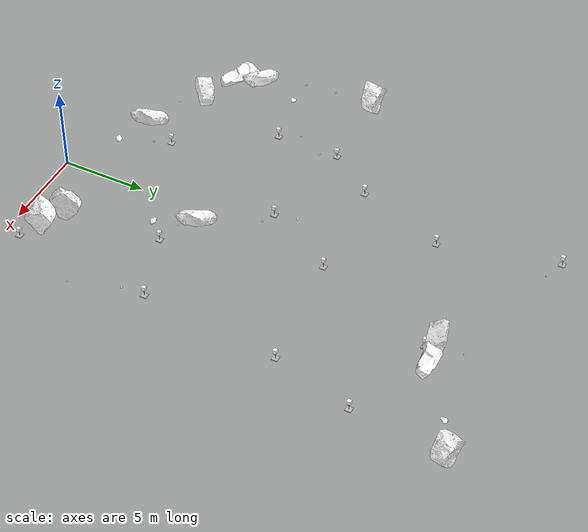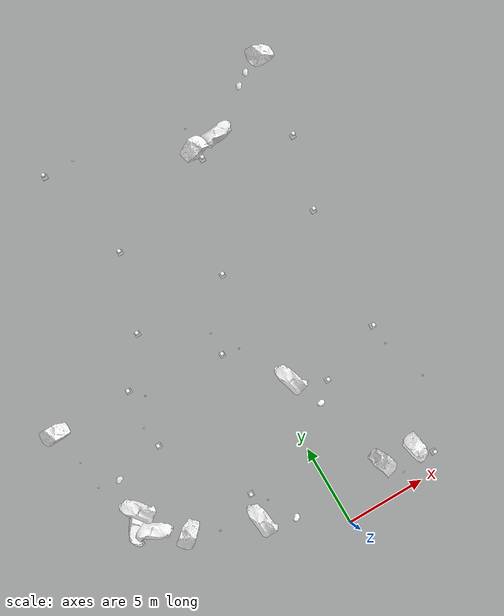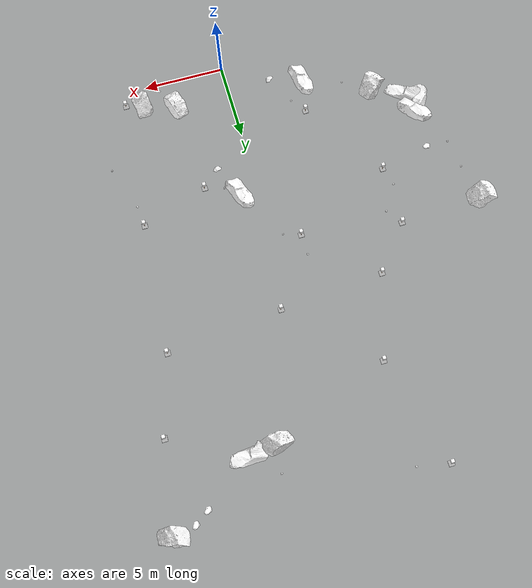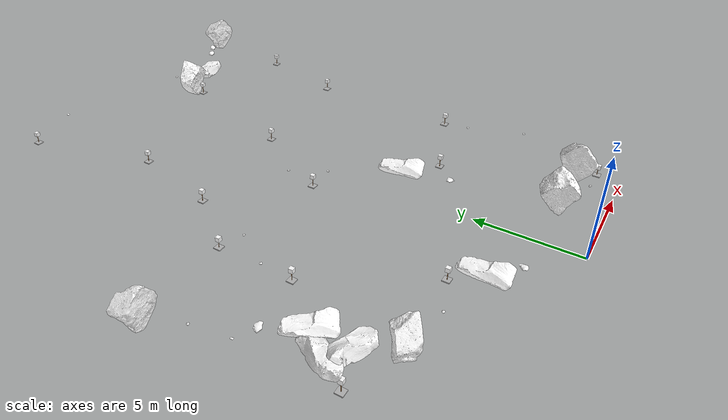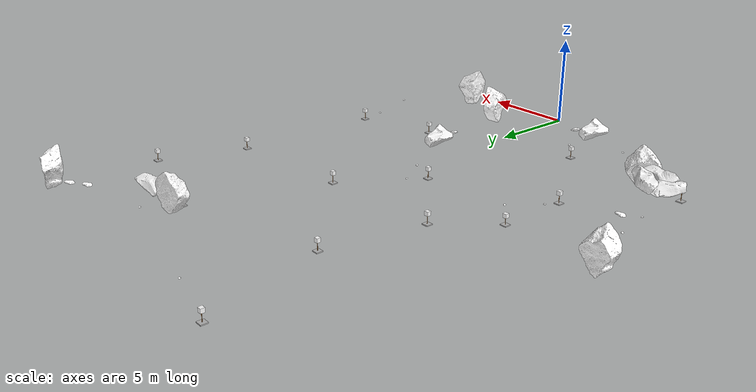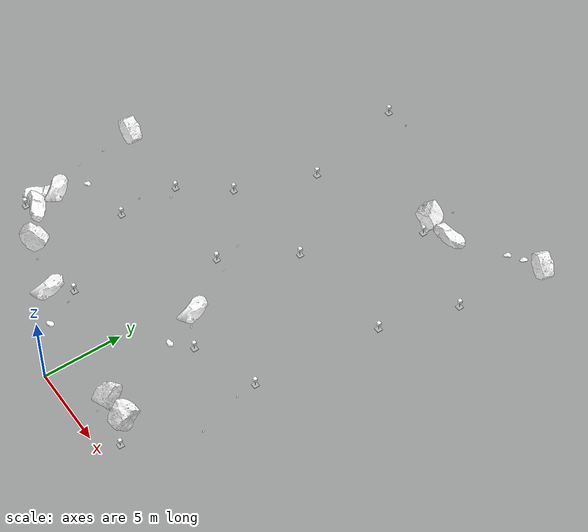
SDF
<sdf version="1.7">
 <world name="rover_world">
  <gravity>0 0 -9.81</gravity>
  <physics name="dart_physics" type="ignored">
   <max_step_size>0.003</max_step_size>
   <real_time_update_rate>333</real_time_update_rate>
   <real_time_factor>1.0</real_time_factor>
  </physics>
  <plugin filename="ignition-gazebo-physics-system" name="ignition::gazebo::systems::Physics"/>
  <plugin filename="ignition-gazebo-user-commands-system" name="ignition::gazebo::systems::UserCommands"/>
  <plugin filename="ignition-gazebo-scene-broadcaster-system" name="ignition::gazebo::systems::SceneBroadcaster"/>
  <plugin filename="ignition-gazebo-contact-system" name="ignition::gazebo::systems::Contact"/>
  <plugin filename="ignition-gazebo-pose-publisher-system" name="ignition::gazebo::systems::PosePublisher">
   <publish_link_pose>false</publish_link_pose>
   <publish_nested_model_pose>false</publish_nested_model_pose>
   <use_pose_vector_msg>true</use_pose_vector_msg>
   <update_frequency>50</update_frequency>
  </plugin>
  <plugin filename="ignition-gazebo-sensors-system" name="ignition::gazebo::systems::Sensors">
   <render_engine>ogre2</render_engine>
  </plugin>
  <plugin filename="ignition-gazebo-imu-system" name="ignition::gazebo::systems::Imu"/>
  <plugin filename="ignition-gazebo-magnetometer-system" name="ignition::gazebo::systems::Magnetometer"/>
  <scene>
   <ambient>0.95 0.95 0.95 1</ambient>
   <background>0.70 0.70 0.70 1</background>
   <shadows>false</shadows>
  </scene>
  <light type="directional" name="sun">
   <cast_shadows>false</cast_shadows>
   <pose>0 0 30 0 0 0</pose>
   <diffuse>0.9 0.85 0.8 1</diffuse>
   <specular>0.2 0.2 0.2 1</specular>
   <direction>-0.3 0.3 -0.9</direction>
  </light>
  <model name="Rock_1">
   <static>true</static>
   <pose>-10.7521 9.1590 0.2245 0.0000 0.0000 -2.9995</pose>
   <link name="rock_link">
    <visual name="visual">
     <geometry><mesh><uri>model://rock_8/meshes/rock_8.obj</uri></mesh></geometry>
     <material>
      <ambient>1 1 1 1</ambient>
      <diffuse>1 1 1 1</diffuse>
      <pbr><metal><albedo_map>model://rock_5/meshes/rock_small_diffuse.jpg</albedo_map></metal></pbr>
     </material>
    </visual>
    <collision name="collision">
     <geometry><mesh><uri>model://rock_8/meshes/rock_8.obj</uri></mesh></geometry>
    </collision>
   </link>
  </model>
  <model name="Rock_2">
   <static>true</static>
   <pose>-2.6425 1.9083 0.5794 0.0000 0.0000 0.4169</pose>
   <link name="rock_link">
    <visual name="visual">
     <geometry><mesh><uri>model://rock_8/meshes/rock_8.obj</uri></mesh></geometry>
     <material>
      <ambient>1 1 1 1</ambient>
      <diffuse>1 1 1 1</diffuse>
      <pbr><metal><albedo_map>model://rock_5/meshes/rock_small_diffuse.jpg</albedo_map></metal></pbr>
     </material>
    </visual>
    <collision name="collision">
     <geometry><mesh><uri>model://rock_8/meshes/rock_8.obj</uri></mesh></geometry>
    </collision>
   </link>
  </model>
  <model name="Rock_5">
   <static>true</static>
   <pose>3.2422 25.0706 0.6621 0.0000 0.0000 -2.8471</pose>
   <link name="rock_link">
    <visual name="visual">
     <geometry><mesh><uri>model://rock_1/meshes/rock_1.obj</uri></mesh></geometry>
     <material>
      <ambient>1 1 1 1</ambient>
      <diffuse>1 1 1 1</diffuse>
      <pbr><metal><albedo_map>model://rock_1/meshes/rock_1_diffuse.jpg</albedo_map></metal></pbr>
     </material>
    </visual>
    <collision name="collision">
     <geometry><mesh><uri>model://rock_1/meshes/rock_1.obj</uri></mesh></geometry>
    </collision>
   </link>
  </model>
  <model name="Rock_12">
   <static>true</static>
   <pose>-10.5786 7.0572 1.0043 0.0000 0.0000 -0.7139</pose>
   <link name="rock_link">
    <visual name="visual">
     <geometry><mesh><uri>model://rock_4/meshes/rock_4.obj</uri></mesh></geometry>
     <material>
      <ambient>1 1 1 1</ambient>
      <diffuse>1 1 1 1</diffuse>
      <pbr><metal><albedo_map>model://rock_4/meshes/rock_4_diffuse.jpg</albedo_map></metal></pbr>
     </material>
    </visual>
    <collision name="collision">
     <geometry><mesh><uri>model://rock_4/meshes/rock_4.obj</uri></mesh></geometry>
    </collision>
   </link>
  </model>
  <model name="Rock_13">
   <static>true</static>
   <pose>-11.9852 9.3769 0.6021 0.0000 0.0000 1.7277</pose>
   <link name="rock_link">
    <visual name="visual">
     <geometry><mesh><uri>model://rock_5/meshes/rock_5.obj</uri></mesh></geometry>
     <material>
      <ambient>1 1 1 1</ambient>
      <diffuse>1 1 1 1</diffuse>
      <pbr><metal><albedo_map>model://rock_5/meshes/rock_small_diffuse.jpg</albedo_map></metal></pbr>
     </material>
    </visual>
    <collision name="collision">
     <geometry><mesh><uri>model://rock_5/meshes/rock_5.obj</uri></mesh></geometry>
    </collision>
   </link>
  </model>
  <model name="Rock_15">
   <static>true</static>
   <pose>-12.2444 11.2058 0.4953 0.0000 0.0000 -1.7183</pose>
   <link name="rock_link">
    <visual name="visual">
     <geometry><mesh><uri>model://rock_5/meshes/rock_5.obj</uri></mesh></geometry>
     <material>
      <ambient>1 1 1 1</ambient>
      <diffuse>1 1 1 1</diffuse>
      <pbr><metal><albedo_map>model://rock_5/meshes/rock_small_diffuse.jpg</albedo_map></metal></pbr>
     </material>
    </visual>
    <collision name="collision">
     <geometry><mesh><uri>model://rock_5/meshes/rock_5.obj</uri></mesh></geometry>
    </collision>
   </link>
  </model>
  <model name="Rock_17">
   <static>true</static>
   <pose>7.4015 8.1647 0.3148 0.0000 0.0000 -0.3836</pose>
   <link name="rock_link">
    <visual name="visual">
     <geometry><mesh><uri>model://rock_5/meshes/rock_5.obj</uri></mesh></geometry>
     <material>
      <ambient>1 1 1 1</ambient>
      <diffuse>1 1 1 1</diffuse>
      <pbr><metal><albedo_map>model://rock_5/meshes/rock_small_diffuse.jpg</albedo_map></metal></pbr>
     </material>
    </visual>
    <collision name="collision">
     <geometry><mesh><uri>model://rock_5/meshes/rock_5.obj</uri></mesh></geometry>
    </collision>
   </link>
  </model>
  <model name="Rock_23">
   <static>true</static>
   <pose>-7.9334 11.0959 0.2887 0.0000 0.0000 0.3878</pose>
   <link name="rock_link">
    <visual name="visual">
     <geometry><mesh><uri>model://rock_5/meshes/rock_5.obj</uri></mesh></geometry>
     <material>
      <ambient>1 1 1 1</ambient>
      <diffuse>1 1 1 1</diffuse>
      <pbr><metal><albedo_map>model://rock_5/meshes/rock_small_diffuse.jpg</albedo_map></metal></pbr>
     </material>
    </visual>
    <collision name="collision">
     <geometry><mesh><uri>model://rock_5/meshes/rock_5.obj</uri></mesh></geometry>
    </collision>
   </link>
  </model>
  <model name="Rock_24">
   <static>true</static>
   <pose>4.2284 1.0327 0.8998 0.0000 0.0000 -2.7517</pose>
   <link name="rock_link">
    <visual name="visual">
     <geometry><mesh><uri>model://rock_5/meshes/rock_5.obj</uri></mesh></geometry>
     <material>
      <ambient>1 1 1 1</ambient>
      <diffuse>1 1 1 1</diffuse>
      <pbr><metal><albedo_map>model://rock_5/meshes/rock_small_diffuse.jpg</albedo_map></metal></pbr>
     </material>
    </visual>
    <collision name="collision">
     <geometry><mesh><uri>model://rock_5/meshes/rock_5.obj</uri></mesh></geometry>
    </collision>
   </link>
  </model>
  <model name="Rock_26">
   <static>true</static>
   <pose>5.0589 24.7832 0.3391 0.0000 0.0000 -2.8890</pose>
   <link name="rock_link">
    <visual name="visual">
     <geometry><mesh><uri>model://rock_4/meshes/rock_4.obj</uri></mesh></geometry>
     <material>
      <ambient>1 1 1 1</ambient>
      <diffuse>1 1 1 1</diffuse>
      <pbr><metal><albedo_map>model://rock_4/meshes/rock_4_diffuse.jpg</albedo_map></metal></pbr>
     </material>
    </visual>
    <collision name="collision">
     <geometry><mesh><uri>model://rock_4/meshes/rock_4.obj</uri></mesh></geometry>
    </collision>
   </link>
  </model>
  <model name="Rock_28">
   <static>true</static>
   <pose>1.1951 9.2417 0.3794 0.0000 0.0000 -1.0919</pose>
   <link name="rock_link">
    <visual name="visual">
     <geometry><mesh><uri>model://rock_4/meshes/rock_4.obj</uri></mesh></geometry>
     <material>
      <ambient>1 1 1 1</ambient>
      <diffuse>1 1 1 1</diffuse>
      <pbr><metal><albedo_map>model://rock_4/meshes/rock_4_diffuse.jpg</albedo_map></metal></pbr>
     </material>
    </visual>
    <collision name="collision">
     <geometry><mesh><uri>model://rock_4/meshes/rock_4.obj</uri></mesh></geometry>
    </collision>
   </link>
  </model>
  <model name="Rock_29">
   <static>true</static>
   <pose>-3.6541 27.8942 0.3392 0.0000 0.0000 -0.3267</pose>
   <link name="rock_link">
    <visual name="visual">
     <geometry><mesh><uri>model://rock_5/meshes/rock_5.obj</uri></mesh></geometry>
     <material>
      <ambient>1 1 1 1</ambient>
      <diffuse>1 1 1 1</diffuse>
      <pbr><metal><albedo_map>model://rock_5/meshes/rock_small_diffuse.jpg</albedo_map></metal></pbr>
     </material>
    </visual>
    <collision name="collision">
     <geometry><mesh><uri>model://rock_5/meshes/rock_5.obj</uri></mesh></geometry>
    </collision>
   </link>
  </model>
  <model name="Rock_32">
   <static>true</static>
   <pose>-6.9405 3.5760 0.8216 0.0000 0.0000 -0.5628</pose>
   <link name="rock_link">
    <visual name="visual">
     <geometry><mesh><uri>model://rock_5/meshes/rock_5.obj</uri></mesh></geometry>
     <material>
      <ambient>1 1 1 1</ambient>
      <diffuse>1 1 1 1</diffuse>
      <pbr><metal><albedo_map>model://rock_5/meshes/rock_small_diffuse.jpg</albedo_map></metal></pbr>
     </material>
    </visual>
    <collision name="collision">
     <geometry><mesh><uri>model://rock_5/meshes/rock_5.obj</uri></mesh></geometry>
    </collision>
   </link>
  </model>
  <model name="Rock_33">
   <static>true</static>
   <pose>-8.3918 3.8657 0.5351 0.0000 0.0000 0.7804</pose>
   <link name="rock_link">
    <visual name="visual">
     <geometry><mesh><uri>model://rock_1/meshes/rock_1.obj</uri></mesh></geometry>
     <material>
      <ambient>1 1 1 1</ambient>
      <diffuse>1 1 1 1</diffuse>
      <pbr><metal><albedo_map>model://rock_1/meshes/rock_1_diffuse.jpg</albedo_map></metal></pbr>
     </material>
    </visual>
    <collision name="collision">
     <geometry><mesh><uri>model://rock_1/meshes/rock_1.obj</uri></mesh></geometry>
    </collision>
   </link>
  </model>
  <model name="Rock_35">
   <static>true</static>
   <pose>-6.9207 12.7473 0.3650 0.0000 0.0000 -1.8284</pose>
   <link name="rock_link">
    <visual name="visual">
     <geometry><mesh><uri>model://rock_5/meshes/rock_5.obj</uri></mesh></geometry>
     <material>
      <ambient>1 1 1 1</ambient>
      <diffuse>1 1 1 1</diffuse>
      <pbr><metal><albedo_map>model://rock_5/meshes/rock_small_diffuse.jpg</albedo_map></metal></pbr>
     </material>
    </visual>
    <collision name="collision">
     <geometry><mesh><uri>model://rock_5/meshes/rock_5.obj</uri></mesh></geometry>
    </collision>
   </link>
  </model>
  <model name="Rock_37">
   <static>true</static>
   <pose>3.5236 26.1548 0.3400 0.0000 0.0000 -0.3213</pose>
   <link name="rock_link">
    <visual name="visual">
     <geometry><mesh><uri>model://rock_5/meshes/rock_5.obj</uri></mesh></geometry>
     <material>
      <ambient>1 1 1 1</ambient>
      <diffuse>1 1 1 1</diffuse>
      <pbr><metal><albedo_map>model://rock_5/meshes/rock_small_diffuse.jpg</albedo_map></metal></pbr>
     </material>
    </visual>
    <collision name="collision">
     <geometry><mesh><uri>model://rock_5/meshes/rock_5.obj</uri></mesh></geometry>
    </collision>
   </link>
  </model>
  <model name="Rock_39">
   <static>true</static>
   <pose>-12.7985 12.9322 0.4402 0.0000 0.0000 0.0638</pose>
   <link name="rock_link">
    <visual name="visual">
     <geometry><mesh><uri>model://rock_1/meshes/rock_1.obj</uri></mesh></geometry>
     <material>
      <ambient>1 1 1 1</ambient>
      <diffuse>1 1 1 1</diffuse>
      <pbr><metal><albedo_map>model://rock_1/meshes/rock_1_diffuse.jpg</albedo_map></metal></pbr>
     </material>
    </visual>
    <collision name="collision">
     <geometry><mesh><uri>model://rock_1/meshes/rock_1.obj</uri></mesh></geometry>
    </collision>
   </link>
  </model>
  <model name="Rock_41">
   <static>true</static>
   <pose>9.7669 27.4101 0.6865 0.0000 0.0000 -0.1646</pose>
   <link name="rock_link">
    <visual name="visual">
     <geometry><mesh><uri>model://rock_1/meshes/rock_1.obj</uri></mesh></geometry>
     <material>
      <ambient>1 1 1 1</ambient>
      <diffuse>1 1 1 1</diffuse>
      <pbr><metal><albedo_map>model://rock_1/meshes/rock_1_diffuse.jpg</albedo_map></metal></pbr>
     </material>
    </visual>
    <collision name="collision">
     <geometry><mesh><uri>model://rock_1/meshes/rock_1.obj</uri></mesh></geometry>
    </collision>
   </link>
  </model>
  <model name="Rock_43">
   <static>true</static>
   <pose>3.9388 2.2661 0.5102 0.0000 0.0000 2.0063</pose>
   <link name="rock_link">
    <visual name="visual">
     <geometry><mesh><uri>model://rock_1/meshes/rock_1.obj</uri></mesh></geometry>
     <material>
      <ambient>1 1 1 1</ambient>
      <diffuse>1 1 1 1</diffuse>
      <pbr><metal><albedo_map>model://rock_1/meshes/rock_1_diffuse.jpg</albedo_map></metal></pbr>
     </material>
    </visual>
    <collision name="collision">
     <geometry><mesh><uri>model://rock_1/meshes/rock_1.obj</uri></mesh></geometry>
    </collision>
   </link>
  </model>
  <model name="Rock_50">
   <static>true</static>
   <pose>-10.2948 5.4811 0.6948 0.0000 0.0000 2.8104</pose>
   <link name="rock_link">
    <visual name="visual">
     <geometry><mesh><uri>model://rock_4/meshes/rock_4.obj</uri></mesh></geometry>
     <material>
      <ambient>1 1 1 1</ambient>
      <diffuse>1 1 1 1</diffuse>
      <pbr><metal><albedo_map>model://rock_4/meshes/rock_4_diffuse.jpg</albedo_map></metal></pbr>
     </material>
    </visual>
    <collision name="collision">
     <geometry><mesh><uri>model://rock_4/meshes/rock_4.obj</uri></mesh></geometry>
    </collision>
   </link>
  </model>
  <model name="Rock_51">
   <static>true</static>
   <pose>-4.5127 2.9549 0.9453 0.0000 0.0000 -1.2766</pose>
   <link name="rock_link">
    <visual name="visual">
     <geometry><mesh><uri>model://rock_4/meshes/rock_4.obj</uri></mesh></geometry>
     <material>
      <ambient>1 1 1 1</ambient>
      <diffuse>1 1 1 1</diffuse>
      <pbr><metal><albedo_map>model://rock_4/meshes/rock_4_diffuse.jpg</albedo_map></metal></pbr>
     </material>
    </visual>
    <collision name="collision">
     <geometry><mesh><uri>model://rock_4/meshes/rock_4.obj</uri></mesh></geometry>
    </collision>
   </link>
  </model>
  <model name="Rock_59">
   <static>true</static>
   <pose>-1.5688 14.0612 0.3066 0.0000 0.0000 2.5368</pose>
   <link name="rock_link">
    <visual name="visual">
     <geometry><mesh><uri>model://rock_5/meshes/rock_5.obj</uri></mesh></geometry>
     <material>
      <ambient>1 1 1 1</ambient>
      <diffuse>1 1 1 1</diffuse>
      <pbr><metal><albedo_map>model://rock_5/meshes/rock_small_diffuse.jpg</albedo_map></metal></pbr>
     </material>
    </visual>
    <collision name="collision">
     <geometry><mesh><uri>model://rock_5/meshes/rock_5.obj</uri></mesh></geometry>
    </collision>
   </link>
  </model>
  <model name="Rock_62">
   <static>true</static>
   <pose>2.1164 6.9889 0.2274 0.0000 0.0000 -0.1336</pose>
   <link name="rock_link">
    <visual name="visual">
     <geometry><mesh><uri>model://rock_8/meshes/rock_8.obj</uri></mesh></geometry>
     <material>
      <ambient>1 1 1 1</ambient>
      <diffuse>1 1 1 1</diffuse>
      <pbr><metal><albedo_map>model://rock_5/meshes/rock_small_diffuse.jpg</albedo_map></metal></pbr>
     </material>
    </visual>
    <collision name="collision">
     <geometry><mesh><uri>model://rock_8/meshes/rock_8.obj</uri></mesh></geometry>
    </collision>
   </link>
  </model>
  <model name="Rock_65">
   <static>true</static>
   <pose>8.3310 5.3475 0.3638 0.0000 0.0000 -1.1222</pose>
   <link name="rock_link">
    <visual name="visual">
     <geometry><mesh><uri>model://rock_5/meshes/rock_5.obj</uri></mesh></geometry>
     <material>
      <ambient>1 1 1 1</ambient>
      <diffuse>1 1 1 1</diffuse>
      <pbr><metal><albedo_map>model://rock_5/meshes/rock_small_diffuse.jpg</albedo_map></metal></pbr>
     </material>
    </visual>
    <collision name="collision">
     <geometry><mesh><uri>model://rock_5/meshes/rock_5.obj</uri></mesh></geometry>
    </collision>
   </link>
  </model>
  <model name="Rock_84">
   <static>true</static>
   <pose>7.8744 26.9293 0.2405 0.0000 0.0000 -2.6021</pose>
   <link name="rock_link">
    <visual name="visual">
     <geometry><mesh><uri>model://rock_8/meshes/rock_8.obj</uri></mesh></geometry>
     <material>
      <ambient>1 1 1 1</ambient>
      <diffuse>1 1 1 1</diffuse>
      <pbr><metal><albedo_map>model://rock_5/meshes/rock_small_diffuse.jpg</albedo_map></metal></pbr>
     </material>
    </visual>
    <collision name="collision">
     <geometry><mesh><uri>model://rock_8/meshes/rock_8.obj</uri></mesh></geometry>
    </collision>
   </link>
  </model>
  <model name="Rock_85">
   <static>true</static>
   <pose>-11.1296 6.2064 0.5943 0.0000 0.0000 1.1702</pose>
   <link name="rock_link">
    <visual name="visual">
     <geometry><mesh><uri>model://rock_4/meshes/rock_4.obj</uri></mesh></geometry>
     <material>
      <ambient>1 1 1 1</ambient>
      <diffuse>1 1 1 1</diffuse>
      <pbr><metal><albedo_map>model://rock_4/meshes/rock_4_diffuse.jpg</albedo_map></metal></pbr>
     </material>
    </visual>
    <collision name="collision">
     <geometry><mesh><uri>model://rock_4/meshes/rock_4.obj</uri></mesh></geometry>
    </collision>
   </link>
  </model>
  <model name="Rock_87">
   <static>true</static>
   <pose>5.0067 1.9230 1.1527 0.0000 0.0000 -1.3286</pose>
   <link name="rock_link">
    <visual name="visual">
     <geometry><mesh><uri>model://rock_1/meshes/rock_1.obj</uri></mesh></geometry>
     <material>
      <ambient>1 1 1 1</ambient>
      <diffuse>1 1 1 1</diffuse>
      <pbr><metal><albedo_map>model://rock_1/meshes/rock_1_diffuse.jpg</albedo_map></metal></pbr>
     </material>
    </visual>
    <collision name="collision">
     <geometry><mesh><uri>model://rock_1/meshes/rock_1.obj</uri></mesh></geometry>
    </collision>
   </link>
  </model>
  <model name="Rock_91">
   <static>true</static>
   <pose>-0.5383 12.3978 0.2958 0.0000 0.0000 -1.4927</pose>
   <link name="rock_link">
    <visual name="visual">
     <geometry><mesh><uri>model://rock_5/meshes/rock_5.obj</uri></mesh></geometry>
     <material>
      <ambient>1 1 1 1</ambient>
      <diffuse>1 1 1 1</diffuse>
      <pbr><metal><albedo_map>model://rock_5/meshes/rock_small_diffuse.jpg</albedo_map></metal></pbr>
     </material>
    </visual>
    <collision name="collision">
     <geometry><mesh><uri>model://rock_5/meshes/rock_5.obj</uri></mesh></geometry>
    </collision>
   </link>
  </model>
  <model name="Rock_92">
   <static>true</static>
   <pose>2.0450 8.5454 0.5340 0.0000 0.0000 1.5472</pose>
   <link name="rock_link">
    <visual name="visual">
     <geometry><mesh><uri>model://rock_5/meshes/rock_5.obj</uri></mesh></geometry>
     <material>
      <ambient>1 1 1 1</ambient>
      <diffuse>1 1 1 1</diffuse>
      <pbr><metal><albedo_map>model://rock_5/meshes/rock_small_diffuse.jpg</albedo_map></metal></pbr>
     </material>
    </visual>
    <collision name="collision">
     <geometry><mesh><uri>model://rock_5/meshes/rock_5.obj</uri></mesh></geometry>
    </collision>
   </link>
  </model>
  <model name="Rock_98">
   <static>true</static>
   <pose>-3.5995 3.6709 0.3088 0.0000 0.0000 -1.0979</pose>
   <link name="rock_link">
    <visual name="visual">
     <geometry><mesh><uri>model://rock_5/meshes/rock_5.obj</uri></mesh></geometry>
     <material>
      <ambient>1 1 1 1</ambient>
      <diffuse>1 1 1 1</diffuse>
      <pbr><metal><albedo_map>model://rock_5/meshes/rock_small_diffuse.jpg</albedo_map></metal></pbr>
     </material>
    </visual>
    <collision name="collision">
     <geometry><mesh><uri>model://rock_5/meshes/rock_5.obj</uri></mesh></geometry>
    </collision>
   </link>
  </model>
  <model name="Rock_113">
   <static>true</static>
   <pose>8.6921 27.5071 0.2455 0.0000 0.0000 -2.3709</pose>
   <link name="rock_link">
    <visual name="visual">
     <geometry><mesh><uri>model://rock_8/meshes/rock_8.obj</uri></mesh></geometry>
     <material>
      <ambient>1 1 1 1</ambient>
      <diffuse>1 1 1 1</diffuse>
      <pbr><metal><albedo_map>model://rock_5/meshes/rock_small_diffuse.jpg</albedo_map></metal></pbr>
     </material>
    </visual>
    <collision name="collision">
     <geometry><mesh><uri>model://rock_8/meshes/rock_8.obj</uri></mesh></geometry>
    </collision>
   </link>
  </model>
  <model name="ArUco_51">
   <static>true</static>
   <pose>3.1830 8.0120 0.0848 0.0000 0.0000 0.0000</pose>
   <include><uri>model://aruco_1</uri></include>
  </model>
  <model name="ArUco_52">
   <static>true</static>
   <pose>7.2690 9.4820 0.1802 0.0000 0.0000 0.0000</pose>
   <include><uri>model://aruco_2</uri></include>
  </model>
  <model name="ArUco_53">
   <static>true</static>
   <pose>7.8780 17.5830 -0.0338 0.0000 0.0000 0.0000</pose>
   <include><uri>model://aruco_3</uri></include>
  </model>
  <model name="ArUco_54">
   <static>true</static>
   <pose>9.2250 22.3890 -0.0094 0.0000 0.0000 0.0000</pose>
   <include><uri>model://aruco_4</uri></include>
  </model>
  <model name="ArUco_55">
   <static>true</static>
   <pose>3.5180 23.9900 -0.2141 0.0000 0.0000 0.0000</pose>
   <include><uri>model://aruco_5</uri></include>
  </model>
  <model name="ArUco_56">
   <static>true</static>
   <pose>0.8820 16.8700 -0.0291 0.0000 0.0000 0.0000</pose>
   <include><uri>model://aruco_6</uri></include>
  </model>
  <model name="ArUco_57">
   <static>true</static>
   <pose>-3.9440 21.4150 -0.4839 0.0000 0.0000 0.0000</pose>
   <include><uri>model://aruco_7</uri></include>
  </model>
  <model name="ArUco_58">
   <static>true</static>
   <pose>-5.4910 16.3340 -0.1219 0.0000 0.0000 0.0000</pose>
   <include><uri>model://aruco_8</uri></include>
  </model>
  <model name="ArUco_59">
   <static>true</static>
   <pose>-7.6950 13.5280 -0.1686 0.0000 0.0000 0.0000</pose>
   <include><uri>model://aruco_9</uri></include>
  </model>
  <model name="ArUco_60">
   <static>true</static>
   <pose>-1.6100 12.6020 -0.0891 0.0000 0.0000 0.0000</pose>
   <include><uri>model://aruco_10</uri></include>
  </model>
  <model name="ArUco_61">
   <static>true</static>
   <pose>-7.7150 9.7210 -0.1552 0.0000 0.0000 0.0000</pose>
   <include><uri>model://aruco_11</uri></include>
  </model>
  <model name="ArUco_62">
   <static>true</static>
   <pose>-4.3110 4.4420 -0.0941 0.0000 0.0000 0.0000</pose>
   <include><uri>model://aruco_12</uri></include>
  </model>
  <model name="ArUco_63">
   <static>true</static>
   <pose>-5.7200 28.1180 -0.5995 0.0000 0.0000 0.0000</pose>
   <include><uri>model://aruco_13</uri></include>
  </model>
  <model name="ArUco_64">
   <static>true</static>
   <pose>-11.4380 5.2300 -0.0011 0.0000 0.0000 0.0000</pose>
   <include><uri>model://aruco_14</uri></include>
  </model>
  <model name="ArUco_65">
   <static>true</static>
   <pose>6.4830 1.1020 0.2112 0.0000 0.0000 0.0000</pose>
   <include><uri>model://aruco_15</uri></include>
  </model>
 </world>
</sdf>

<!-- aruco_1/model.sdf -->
<sdf version="1.6">
  <model name="aruco_1">
    <static>true</static>
    <link name="link">
      <!-- Concrete Base -->
      <visual name="base_visual">
        <pose>0 0 0.025 0 0 0</pose>
        <geometry>
          <box>
            <size>0.35 0.35 0.05</size>
          </box>
        </geometry>
        <material>
          <ambient>0.7 0.7 0.7 1</ambient>
          <diffuse>0.7 0.7 0.7 1</diffuse>
        </material>
      </visual>
      <collision name="base_collision">
        <pose>0 0 0.025 0 0 0</pose>
        <geometry>
          <box>
            <size>0.35 0.35 0.05</size>
          </box>
        </geometry>
      </collision>

      <!-- Wooden Pole -->
      <visual name="pole_visual">
        <pose>0 0 0.26 0 0 0</pose>
        <geometry>
          <cylinder>
            <radius>0.015</radius>
            <length>0.42</length>
          </cylinder>
        </geometry>
        <material>
          <ambient>0.6 0.4 0.2 1</ambient>
          <diffuse>0.6 0.4 0.2 1</diffuse>
        </material>
      </visual>
      <collision name="pole_collision">
        <pose>0 0 0.26 0 0 0</pose>
        <geometry>
          <cylinder>
            <radius>0.015</radius>
            <length>0.42</length>
          </cylinder>
        </geometry>
      </collision>

      <!-- Head Box with ArUco Texture -->
      <visual name="head_visual">
        <pose>0 0 0.575 0 0 0</pose>
        <geometry>
          <box>
            <size>0.21 0.21 0.21</size>
          </box>
        </geometry>
        <material>
          <ambient>1 1 1 1</ambient>
          <diffuse>1 1 1 1</diffuse>
          <pbr>
            <metal>
              <albedo_map>model://aruco_1/materials/textures/marker_1.png</albedo_map>
            </metal>
          </pbr>
        </material>
      </visual>
      <collision name="head_collision">
        <pose>0 0 0.575 0 0 0</pose>
        <geometry>
          <box>
            <size>0.21 0.21 0.21</size>
          </box>
        </geometry>
      </collision>
    </link>
  </model>
</sdf>

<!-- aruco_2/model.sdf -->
<sdf version="1.6">
  <model name="aruco_2">
    <static>true</static>
    <link name="link">
      <!-- Concrete Base -->
      <visual name="base_visual">
        <pose>0 0 0.025 0 0 0</pose>
        <geometry>
          <box>
            <size>0.35 0.35 0.05</size>
          </box>
        </geometry>
        <material>
          <ambient>0.7 0.7 0.7 1</ambient>
          <diffuse>0.7 0.7 0.7 1</diffuse>
        </material>
      </visual>
      <collision name="base_collision">
        <pose>0 0 0.025 0 0 0</pose>
        <geometry>
          <box>
            <size>0.35 0.35 0.05</size>
          </box>
        </geometry>
      </collision>

      <!-- Wooden Pole -->
      <visual name="pole_visual">
        <pose>0 0 0.26 0 0 0</pose>
        <geometry>
          <cylinder>
            <radius>0.015</radius>
            <length>0.42</length>
          </cylinder>
        </geometry>
        <material>
          <ambient>0.6 0.4 0.2 1</ambient>
          <diffuse>0.6 0.4 0.2 1</diffuse>
        </material>
      </visual>
      <collision name="pole_collision">
        <pose>0 0 0.26 0 0 0</pose>
        <geometry>
          <cylinder>
            <radius>0.015</radius>
            <length>0.42</length>
          </cylinder>
        </geometry>
      </collision>

      <!-- Head Box with ArUco Texture -->
      <visual name="head_visual">
        <pose>0 0 0.575 0 0 0</pose>
        <geometry>
          <box>
            <size>0.21 0.21 0.21</size>
          </box>
        </geometry>
        <material>
          <ambient>1 1 1 1</ambient>
          <diffuse>1 1 1 1</diffuse>
          <pbr>
            <metal>
              <albedo_map>model://aruco_2/materials/textures/marker_2.png</albedo_map>
            </metal>
          </pbr>
        </material>
      </visual>
      <collision name="head_collision">
        <pose>0 0 0.575 0 0 0</pose>
        <geometry>
          <box>
            <size>0.21 0.21 0.21</size>
          </box>
        </geometry>
      </collision>
    </link>
  </model>
</sdf>

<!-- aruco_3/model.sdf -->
<sdf version="1.6">
  <model name="aruco_3">
    <static>true</static>
    <link name="link">
      <!-- Concrete Base -->
      <visual name="base_visual">
        <pose>0 0 0.025 0 0 0</pose>
        <geometry>
          <box>
            <size>0.35 0.35 0.05</size>
          </box>
        </geometry>
        <material>
          <ambient>0.7 0.7 0.7 1</ambient>
          <diffuse>0.7 0.7 0.7 1</diffuse>
        </material>
      </visual>
      <collision name="base_collision">
        <pose>0 0 0.025 0 0 0</pose>
        <geometry>
          <box>
            <size>0.35 0.35 0.05</size>
          </box>
        </geometry>
      </collision>

      <!-- Wooden Pole -->
      <visual name="pole_visual">
        <pose>0 0 0.26 0 0 0</pose>
        <geometry>
          <cylinder>
            <radius>0.015</radius>
            <length>0.42</length>
          </cylinder>
        </geometry>
        <material>
          <ambient>0.6 0.4 0.2 1</ambient>
          <diffuse>0.6 0.4 0.2 1</diffuse>
        </material>
      </visual>
      <collision name="pole_collision">
        <pose>0 0 0.26 0 0 0</pose>
        <geometry>
          <cylinder>
            <radius>0.015</radius>
            <length>0.42</length>
          </cylinder>
        </geometry>
      </collision>

      <!-- Head Box with ArUco Texture -->
      <visual name="head_visual">
        <pose>0 0 0.575 0 0 0</pose>
        <geometry>
          <box>
            <size>0.21 0.21 0.21</size>
          </box>
        </geometry>
        <material>
          <ambient>1 1 1 1</ambient>
          <diffuse>1 1 1 1</diffuse>
          <pbr>
            <metal>
              <albedo_map>model://aruco_3/materials/textures/marker_3.png</albedo_map>
            </metal>
          </pbr>
        </material>
      </visual>
      <collision name="head_collision">
        <pose>0 0 0.575 0 0 0</pose>
        <geometry>
          <box>
            <size>0.21 0.21 0.21</size>
          </box>
        </geometry>
      </collision>
    </link>
  </model>
</sdf>

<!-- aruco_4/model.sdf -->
<sdf version="1.6">
  <model name="aruco_4">
    <static>true</static>
    <link name="link">
      <!-- Concrete Base -->
      <visual name="base_visual">
        <pose>0 0 0.025 0 0 0</pose>
        <geometry>
          <box>
            <size>0.35 0.35 0.05</size>
          </box>
        </geometry>
        <material>
          <ambient>0.7 0.7 0.7 1</ambient>
          <diffuse>0.7 0.7 0.7 1</diffuse>
        </material>
      </visual>
      <collision name="base_collision">
        <pose>0 0 0.025 0 0 0</pose>
        <geometry>
          <box>
            <size>0.35 0.35 0.05</size>
          </box>
        </geometry>
      </collision>

      <!-- Wooden Pole -->
      <visual name="pole_visual">
        <pose>0 0 0.26 0 0 0</pose>
        <geometry>
          <cylinder>
            <radius>0.015</radius>
            <length>0.42</length>
          </cylinder>
        </geometry>
        <material>
          <ambient>0.6 0.4 0.2 1</ambient>
          <diffuse>0.6 0.4 0.2 1</diffuse>
        </material>
      </visual>
      <collision name="pole_collision">
        <pose>0 0 0.26 0 0 0</pose>
        <geometry>
          <cylinder>
            <radius>0.015</radius>
            <length>0.42</length>
          </cylinder>
        </geometry>
      </collision>

      <!-- Head Box with ArUco Texture -->
      <visual name="head_visual">
        <pose>0 0 0.575 0 0 0</pose>
        <geometry>
          <box>
            <size>0.21 0.21 0.21</size>
          </box>
        </geometry>
        <material>
          <ambient>1 1 1 1</ambient>
          <diffuse>1 1 1 1</diffuse>
          <pbr>
            <metal>
              <albedo_map>model://aruco_4/materials/textures/marker_4.png</albedo_map>
            </metal>
          </pbr>
        </material>
      </visual>
      <collision name="head_collision">
        <pose>0 0 0.575 0 0 0</pose>
        <geometry>
          <box>
            <size>0.21 0.21 0.21</size>
          </box>
        </geometry>
      </collision>
    </link>
  </model>
</sdf>

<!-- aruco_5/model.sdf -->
<sdf version="1.6">
  <model name="aruco_5">
    <static>true</static>
    <link name="link">
      <!-- Concrete Base -->
      <visual name="base_visual">
        <pose>0 0 0.025 0 0 0</pose>
        <geometry>
          <box>
            <size>0.35 0.35 0.05</size>
          </box>
        </geometry>
        <material>
          <ambient>0.7 0.7 0.7 1</ambient>
          <diffuse>0.7 0.7 0.7 1</diffuse>
        </material>
      </visual>
      <collision name="base_collision">
        <pose>0 0 0.025 0 0 0</pose>
        <geometry>
          <box>
            <size>0.35 0.35 0.05</size>
          </box>
        </geometry>
      </collision>

      <!-- Wooden Pole -->
      <visual name="pole_visual">
        <pose>0 0 0.26 0 0 0</pose>
        <geometry>
          <cylinder>
            <radius>0.015</radius>
            <length>0.42</length>
          </cylinder>
        </geometry>
        <material>
          <ambient>0.6 0.4 0.2 1</ambient>
          <diffuse>0.6 0.4 0.2 1</diffuse>
        </material>
      </visual>
      <collision name="pole_collision">
        <pose>0 0 0.26 0 0 0</pose>
        <geometry>
          <cylinder>
            <radius>0.015</radius>
            <length>0.42</length>
          </cylinder>
        </geometry>
      </collision>

      <!-- Head Box with ArUco Texture -->
      <visual name="head_visual">
        <pose>0 0 0.575 0 0 0</pose>
        <geometry>
          <box>
            <size>0.21 0.21 0.21</size>
          </box>
        </geometry>
        <material>
          <ambient>1 1 1 1</ambient>
          <diffuse>1 1 1 1</diffuse>
          <pbr>
            <metal>
              <albedo_map>model://aruco_5/materials/textures/marker_5.png</albedo_map>
            </metal>
          </pbr>
        </material>
      </visual>
      <collision name="head_collision">
        <pose>0 0 0.575 0 0 0</pose>
        <geometry>
          <box>
            <size>0.21 0.21 0.21</size>
          </box>
        </geometry>
      </collision>
    </link>
  </model>
</sdf>

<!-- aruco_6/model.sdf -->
<sdf version="1.6">
  <model name="aruco_6">
    <static>true</static>
    <link name="link">
      <!-- Concrete Base -->
      <visual name="base_visual">
        <pose>0 0 0.025 0 0 0</pose>
        <geometry>
          <box>
            <size>0.35 0.35 0.05</size>
          </box>
        </geometry>
        <material>
          <ambient>0.7 0.7 0.7 1</ambient>
          <diffuse>0.7 0.7 0.7 1</diffuse>
        </material>
      </visual>
      <collision name="base_collision">
        <pose>0 0 0.025 0 0 0</pose>
        <geometry>
          <box>
            <size>0.35 0.35 0.05</size>
          </box>
        </geometry>
      </collision>

      <!-- Wooden Pole -->
      <visual name="pole_visual">
        <pose>0 0 0.26 0 0 0</pose>
        <geometry>
          <cylinder>
            <radius>0.015</radius>
            <length>0.42</length>
          </cylinder>
        </geometry>
        <material>
          <ambient>0.6 0.4 0.2 1</ambient>
          <diffuse>0.6 0.4 0.2 1</diffuse>
        </material>
      </visual>
      <collision name="pole_collision">
        <pose>0 0 0.26 0 0 0</pose>
        <geometry>
          <cylinder>
            <radius>0.015</radius>
            <length>0.42</length>
          </cylinder>
        </geometry>
      </collision>

      <!-- Head Box with ArUco Texture -->
      <visual name="head_visual">
        <pose>0 0 0.575 0 0 0</pose>
        <geometry>
          <box>
            <size>0.21 0.21 0.21</size>
          </box>
        </geometry>
        <material>
          <ambient>1 1 1 1</ambient>
          <diffuse>1 1 1 1</diffuse>
          <pbr>
            <metal>
              <albedo_map>model://aruco_6/materials/textures/marker_6.png</albedo_map>
            </metal>
          </pbr>
        </material>
      </visual>
      <collision name="head_collision">
        <pose>0 0 0.575 0 0 0</pose>
        <geometry>
          <box>
            <size>0.21 0.21 0.21</size>
          </box>
        </geometry>
      </collision>
    </link>
  </model>
</sdf>

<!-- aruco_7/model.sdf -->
<sdf version="1.6">
  <model name="aruco_7">
    <static>true</static>
    <link name="link">
      <!-- Concrete Base -->
      <visual name="base_visual">
        <pose>0 0 0.025 0 0 0</pose>
        <geometry>
          <box>
            <size>0.35 0.35 0.05</size>
          </box>
        </geometry>
        <material>
          <ambient>0.7 0.7 0.7 1</ambient>
          <diffuse>0.7 0.7 0.7 1</diffuse>
        </material>
      </visual>
      <collision name="base_collision">
        <pose>0 0 0.025 0 0 0</pose>
        <geometry>
          <box>
            <size>0.35 0.35 0.05</size>
          </box>
        </geometry>
      </collision>

      <!-- Wooden Pole -->
      <visual name="pole_visual">
        <pose>0 0 0.26 0 0 0</pose>
        <geometry>
          <cylinder>
            <radius>0.015</radius>
            <length>0.42</length>
          </cylinder>
        </geometry>
        <material>
          <ambient>0.6 0.4 0.2 1</ambient>
          <diffuse>0.6 0.4 0.2 1</diffuse>
        </material>
      </visual>
      <collision name="pole_collision">
        <pose>0 0 0.26 0 0 0</pose>
        <geometry>
          <cylinder>
            <radius>0.015</radius>
            <length>0.42</length>
          </cylinder>
        </geometry>
      </collision>

      <!-- Head Box with ArUco Texture -->
      <visual name="head_visual">
        <pose>0 0 0.575 0 0 0</pose>
        <geometry>
          <box>
            <size>0.21 0.21 0.21</size>
          </box>
        </geometry>
        <material>
          <ambient>1 1 1 1</ambient>
          <diffuse>1 1 1 1</diffuse>
          <pbr>
            <metal>
              <albedo_map>model://aruco_7/materials/textures/marker_7.png</albedo_map>
            </metal>
          </pbr>
        </material>
      </visual>
      <collision name="head_collision">
        <pose>0 0 0.575 0 0 0</pose>
        <geometry>
          <box>
            <size>0.21 0.21 0.21</size>
          </box>
        </geometry>
      </collision>
    </link>
  </model>
</sdf>

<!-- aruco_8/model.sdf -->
<sdf version="1.6">
  <model name="aruco_8">
    <static>true</static>
    <link name="link">
      <!-- Concrete Base -->
      <visual name="base_visual">
        <pose>0 0 0.025 0 0 0</pose>
        <geometry>
          <box>
            <size>0.35 0.35 0.05</size>
          </box>
        </geometry>
        <material>
          <ambient>0.7 0.7 0.7 1</ambient>
          <diffuse>0.7 0.7 0.7 1</diffuse>
        </material>
      </visual>
      <collision name="base_collision">
        <pose>0 0 0.025 0 0 0</pose>
        <geometry>
          <box>
            <size>0.35 0.35 0.05</size>
          </box>
        </geometry>
      </collision>

      <!-- Wooden Pole -->
      <visual name="pole_visual">
        <pose>0 0 0.26 0 0 0</pose>
        <geometry>
          <cylinder>
            <radius>0.015</radius>
            <length>0.42</length>
          </cylinder>
        </geometry>
        <material>
          <ambient>0.6 0.4 0.2 1</ambient>
          <diffuse>0.6 0.4 0.2 1</diffuse>
        </material>
      </visual>
      <collision name="pole_collision">
        <pose>0 0 0.26 0 0 0</pose>
        <geometry>
          <cylinder>
            <radius>0.015</radius>
            <length>0.42</length>
          </cylinder>
        </geometry>
      </collision>

      <!-- Head Box with ArUco Texture -->
      <visual name="head_visual">
        <pose>0 0 0.575 0 0 0</pose>
        <geometry>
          <box>
            <size>0.21 0.21 0.21</size>
          </box>
        </geometry>
        <material>
          <ambient>1 1 1 1</ambient>
          <diffuse>1 1 1 1</diffuse>
          <pbr>
            <metal>
              <albedo_map>model://aruco_8/materials/textures/marker_8.png</albedo_map>
            </metal>
          </pbr>
        </material>
      </visual>
      <collision name="head_collision">
        <pose>0 0 0.575 0 0 0</pose>
        <geometry>
          <box>
            <size>0.21 0.21 0.21</size>
          </box>
        </geometry>
      </collision>
    </link>
  </model>
</sdf>

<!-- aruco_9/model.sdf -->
<sdf version="1.6">
  <model name="aruco_9">
    <static>true</static>
    <link name="link">
      <visual name="base_visual">
        <pose>0 0 0.025 0 0 0</pose>
        <geometry>
          <box>
            <size>0.35 0.35 0.05</size>
          </box>
        </geometry>
        <material>
          <ambient>0.7 0.7 0.7 1</ambient>
          <diffuse>0.7 0.7 0.7 1</diffuse>
        </material>
      </visual>
      <collision name="base_collision">
        <pose>0 0 0.025 0 0 0</pose>
        <geometry>
          <box>
            <size>0.35 0.35 0.05</size>
          </box>
        </geometry>
      </collision>
      <visual name="pole_visual">
        <pose>0 0 0.228500 0 0 0</pose>
        <geometry>
          <cylinder>
            <radius>0.015</radius>
            <length>0.357000</length>
          </cylinder>
        </geometry>
        <material>
          <ambient>0.6 0.4 0.2 1</ambient>
          <diffuse>0.6 0.4 0.2 1</diffuse>
        </material>
      </visual>
      <collision name="pole_collision">
        <pose>0 0 0.228500 0 0 0</pose>
        <geometry>
          <cylinder>
            <radius>0.015</radius>
            <length>0.357000</length>
          </cylinder>
        </geometry>
      </collision>
      <visual name="head_visual">
        <pose>0 0 0.496250 0 0 0</pose>
        <geometry>
          <box>
            <size>0.21 0.21 0.21</size>
          </box>
        </geometry>
        <material>
          <ambient>1 1 1 1</ambient>
          <diffuse>1 1 1 1</diffuse>
          <pbr>
            <metal>
              <albedo_map>model://aruco_9/materials/textures/marker_9.png</albedo_map>
            </metal>
          </pbr>
        </material>
      </visual>
      <collision name="head_collision">
        <pose>0 0 0.496250 0 0 0</pose>
        <geometry>
          <box>
            <size>0.21 0.21 0.21</size>
          </box>
        </geometry>
      </collision>
    </link>
  </model>
</sdf>

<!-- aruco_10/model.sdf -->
<sdf version="1.6">
  <model name="aruco_10">
    <static>true</static>
    <link name="link">
      <!-- Concrete Base -->
      <visual name="base_visual">
        <pose>0 0 0.025 0 0 0</pose>
        <geometry>
          <box>
            <size>0.35 0.35 0.05</size>
          </box>
        </geometry>
        <material>
          <ambient>0.7 0.7 0.7 1</ambient>
          <diffuse>0.7 0.7 0.7 1</diffuse>
        </material>
      </visual>
      <collision name="base_collision">
        <pose>0 0 0.025 0 0 0</pose>
        <geometry>
          <box>
            <size>0.35 0.35 0.05</size>
          </box>
        </geometry>
      </collision>

      <!-- Wooden Pole -->
      <visual name="pole_visual">
        <pose>0 0 0.26 0 0 0</pose>
        <geometry>
          <cylinder>
            <radius>0.015</radius>
            <length>0.42</length>
          </cylinder>
        </geometry>
        <material>
          <ambient>0.6 0.4 0.2 1</ambient>
          <diffuse>0.6 0.4 0.2 1</diffuse>
        </material>
      </visual>
      <collision name="pole_collision">
        <pose>0 0 0.26 0 0 0</pose>
        <geometry>
          <cylinder>
            <radius>0.015</radius>
            <length>0.42</length>
          </cylinder>
        </geometry>
      </collision>

      <!-- Head Box with ArUco Texture -->
      <visual name="head_visual">
        <pose>0 0 0.575 0 0 0</pose>
        <geometry>
          <box>
            <size>0.21 0.21 0.21</size>
          </box>
        </geometry>
        <material>
          <ambient>1 1 1 1</ambient>
          <diffuse>1 1 1 1</diffuse>
          <pbr>
            <metal>
              <albedo_map>model://aruco_10/materials/textures/marker_10.png</albedo_map>
            </metal>
          </pbr>
        </material>
      </visual>
      <collision name="head_collision">
        <pose>0 0 0.575 0 0 0</pose>
        <geometry>
          <box>
            <size>0.21 0.21 0.21</size>
          </box>
        </geometry>
      </collision>
    </link>
  </model>
</sdf>

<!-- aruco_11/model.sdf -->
<sdf version="1.6">
  <model name="aruco_11">
    <static>true</static>
    <link name="link">
      <!-- Concrete Base -->
      <visual name="base_visual">
        <pose>0 0 0.025 0 0 0</pose>
        <geometry>
          <box>
            <size>0.35 0.35 0.05</size>
          </box>
        </geometry>
        <material>
          <ambient>0.7 0.7 0.7 1</ambient>
          <diffuse>0.7 0.7 0.7 1</diffuse>
        </material>
      </visual>
      <collision name="base_collision">
        <pose>0 0 0.025 0 0 0</pose>
        <geometry>
          <box>
            <size>0.35 0.35 0.05</size>
          </box>
        </geometry>
      </collision>

      <!-- Wooden Pole -->
      <visual name="pole_visual">
        <pose>0 0 0.26 0 0 0</pose>
        <geometry>
          <cylinder>
            <radius>0.015</radius>
            <length>0.42</length>
          </cylinder>
        </geometry>
        <material>
          <ambient>0.6 0.4 0.2 1</ambient>
          <diffuse>0.6 0.4 0.2 1</diffuse>
        </material>
      </visual>
      <collision name="pole_collision">
        <pose>0 0 0.26 0 0 0</pose>
        <geometry>
          <cylinder>
            <radius>0.015</radius>
            <length>0.42</length>
          </cylinder>
        </geometry>
      </collision>

      <!-- Head Box with ArUco Texture -->
      <visual name="head_visual">
        <pose>0 0 0.575 0 0 0</pose>
        <geometry>
          <box>
            <size>0.21 0.21 0.21</size>
          </box>
        </geometry>
        <material>
          <ambient>1 1 1 1</ambient>
          <diffuse>1 1 1 1</diffuse>
          <pbr>
            <metal>
              <albedo_map>model://aruco_11/materials/textures/marker_11.png</albedo_map>
            </metal>
          </pbr>
        </material>
      </visual>
      <collision name="head_collision">
        <pose>0 0 0.575 0 0 0</pose>
        <geometry>
          <box>
            <size>0.21 0.21 0.21</size>
          </box>
        </geometry>
      </collision>
    </link>
  </model>
</sdf>

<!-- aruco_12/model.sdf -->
<sdf version="1.6">
  <model name="aruco_12">
    <static>true</static>
    <link name="link">
      <!-- Concrete Base -->
      <visual name="base_visual">
        <pose>0 0 0.025 0 0 0</pose>
        <geometry>
          <box>
            <size>0.35 0.35 0.05</size>
          </box>
        </geometry>
        <material>
          <ambient>0.7 0.7 0.7 1</ambient>
          <diffuse>0.7 0.7 0.7 1</diffuse>
        </material>
      </visual>
      <collision name="base_collision">
        <pose>0 0 0.025 0 0 0</pose>
        <geometry>
          <box>
            <size>0.35 0.35 0.05</size>
          </box>
        </geometry>
      </collision>

      <!-- Wooden Pole -->
      <visual name="pole_visual">
        <pose>0 0 0.26 0 0 0</pose>
        <geometry>
          <cylinder>
            <radius>0.015</radius>
            <length>0.42</length>
          </cylinder>
        </geometry>
        <material>
          <ambient>0.6 0.4 0.2 1</ambient>
          <diffuse>0.6 0.4 0.2 1</diffuse>
        </material>
      </visual>
      <collision name="pole_collision">
        <pose>0 0 0.26 0 0 0</pose>
        <geometry>
          <cylinder>
            <radius>0.015</radius>
            <length>0.42</length>
          </cylinder>
        </geometry>
      </collision>

      <!-- Head Box with ArUco Texture -->
      <visual name="head_visual">
        <pose>0 0 0.575 0 0 0</pose>
        <geometry>
          <box>
            <size>0.21 0.21 0.21</size>
          </box>
        </geometry>
        <material>
          <ambient>1 1 1 1</ambient>
          <diffuse>1 1 1 1</diffuse>
          <pbr>
            <metal>
              <albedo_map>model://aruco_12/materials/textures/marker_12.png</albedo_map>
            </metal>
          </pbr>
        </material>
      </visual>
      <collision name="head_collision">
        <pose>0 0 0.575 0 0 0</pose>
        <geometry>
          <box>
            <size>0.21 0.21 0.21</size>
          </box>
        </geometry>
      </collision>
    </link>
  </model>
</sdf>

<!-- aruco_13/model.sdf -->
<sdf version="1.6">
  <model name="aruco_13">
    <static>true</static>
    <link name="link">
      <!-- Concrete Base -->
      <visual name="base_visual">
        <pose>0 0 0.025 0 0 0</pose>
        <geometry>
          <box>
            <size>0.35 0.35 0.05</size>
          </box>
        </geometry>
        <material>
          <ambient>0.7 0.7 0.7 1</ambient>
          <diffuse>0.7 0.7 0.7 1</diffuse>
        </material>
      </visual>
      <collision name="base_collision">
        <pose>0 0 0.025 0 0 0</pose>
        <geometry>
          <box>
            <size>0.35 0.35 0.05</size>
          </box>
        </geometry>
      </collision>

      <!-- Wooden Pole -->
      <visual name="pole_visual">
        <pose>0 0 0.26 0 0 0</pose>
        <geometry>
          <cylinder>
            <radius>0.015</radius>
            <length>0.42</length>
          </cylinder>
        </geometry>
        <material>
          <ambient>0.6 0.4 0.2 1</ambient>
          <diffuse>0.6 0.4 0.2 1</diffuse>
        </material>
      </visual>
      <collision name="pole_collision">
        <pose>0 0 0.26 0 0 0</pose>
        <geometry>
          <cylinder>
            <radius>0.015</radius>
            <length>0.42</length>
          </cylinder>
        </geometry>
      </collision>

      <!-- Head Box with ArUco Texture -->
      <visual name="head_visual">
        <pose>0 0 0.575 0 0 0</pose>
        <geometry>
          <box>
            <size>0.21 0.21 0.21</size>
          </box>
        </geometry>
        <material>
          <ambient>1 1 1 1</ambient>
          <diffuse>1 1 1 1</diffuse>
          <pbr>
            <metal>
              <albedo_map>model://aruco_13/materials/textures/marker_13.png</albedo_map>
            </metal>
          </pbr>
        </material>
      </visual>
      <collision name="head_collision">
        <pose>0 0 0.575 0 0 0</pose>
        <geometry>
          <box>
            <size>0.21 0.21 0.21</size>
          </box>
        </geometry>
      </collision>
    </link>
  </model>
</sdf>

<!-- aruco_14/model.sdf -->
<sdf version="1.6">
  <model name="aruco_14">
    <static>true</static>
    <link name="link">
      <!-- Concrete Base -->
      <visual name="base_visual">
        <pose>0 0 0.025 0 0 0</pose>
        <geometry>
          <box>
            <size>0.35 0.35 0.05</size>
          </box>
        </geometry>
        <material>
          <ambient>0.7 0.7 0.7 1</ambient>
          <diffuse>0.7 0.7 0.7 1</diffuse>
        </material>
      </visual>
      <collision name="base_collision">
        <pose>0 0 0.025 0 0 0</pose>
        <geometry>
          <box>
            <size>0.35 0.35 0.05</size>
          </box>
        </geometry>
      </collision>

      <!-- Wooden Pole -->
      <visual name="pole_visual">
        <pose>0 0 0.26 0 0 0</pose>
        <geometry>
          <cylinder>
            <radius>0.015</radius>
            <length>0.42</length>
          </cylinder>
        </geometry>
        <material>
          <ambient>0.6 0.4 0.2 1</ambient>
          <diffuse>0.6 0.4 0.2 1</diffuse>
        </material>
      </visual>
      <collision name="pole_collision">
        <pose>0 0 0.26 0 0 0</pose>
        <geometry>
          <cylinder>
            <radius>0.015</radius>
            <length>0.42</length>
          </cylinder>
        </geometry>
      </collision>

      <!-- Head Box with ArUco Texture -->
      <visual name="head_visual">
        <pose>0 0 0.575 0 0 0</pose>
        <geometry>
          <box>
            <size>0.21 0.21 0.21</size>
          </box>
        </geometry>
        <material>
          <ambient>1 1 1 1</ambient>
          <diffuse>1 1 1 1</diffuse>
          <pbr>
            <metal>
              <albedo_map>model://aruco_14/materials/textures/marker_14.png</albedo_map>
            </metal>
          </pbr>
        </material>
      </visual>
      <collision name="head_collision">
        <pose>0 0 0.575 0 0 0</pose>
        <geometry>
          <box>
            <size>0.21 0.21 0.21</size>
          </box>
        </geometry>
      </collision>
    </link>
  </model>
</sdf>

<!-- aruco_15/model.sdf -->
<sdf version="1.6">
  <model name="aruco_15">
    <static>true</static>
    <link name="link">
      <visual name="base_visual">
        <pose>0 0 0.025 0 0 0</pose>
        <geometry>
          <box>
            <size>0.35 0.35 0.05</size>
          </box>
        </geometry>
        <material>
          <ambient>0.7 0.7 0.7 1</ambient>
          <diffuse>0.7 0.7 0.7 1</diffuse>
        </material>
      </visual>
      <collision name="base_collision">
        <pose>0 0 0.025 0 0 0</pose>
        <geometry>
          <box>
            <size>0.35 0.35 0.05</size>
          </box>
        </geometry>
      </collision>
      <visual name="pole_visual">
        <pose>0 0 0.228500 0 0 0</pose>
        <geometry>
          <cylinder>
            <radius>0.015</radius>
            <length>0.357000</length>
          </cylinder>
        </geometry>
        <material>
          <ambient>0.6 0.4 0.2 1</ambient>
          <diffuse>0.6 0.4 0.2 1</diffuse>
        </material>
      </visual>
      <collision name="pole_collision">
        <pose>0 0 0.228500 0 0 0</pose>
        <geometry>
          <cylinder>
            <radius>0.015</radius>
            <length>0.357000</length>
          </cylinder>
        </geometry>
      </collision>
      <visual name="head_visual">
        <pose>0 0 0.496250 0 0 0</pose>
        <geometry>
          <box>
            <size>0.21 0.21 0.21</size>
          </box>
        </geometry>
        <material>
          <ambient>1 1 1 1</ambient>
          <diffuse>1 1 1 1</diffuse>
          <pbr>
            <metal>
              <albedo_map>model://aruco_15/materials/textures/marker_15.png</albedo_map>
            </metal>
          </pbr>
        </material>
      </visual>
      <collision name="head_collision">
        <pose>0 0 0.496250 0 0 0</pose>
        <geometry>
          <box>
            <size>0.21 0.21 0.21</size>
          </box>
        </geometry>
      </collision>
    </link>
  </model>
</sdf>
